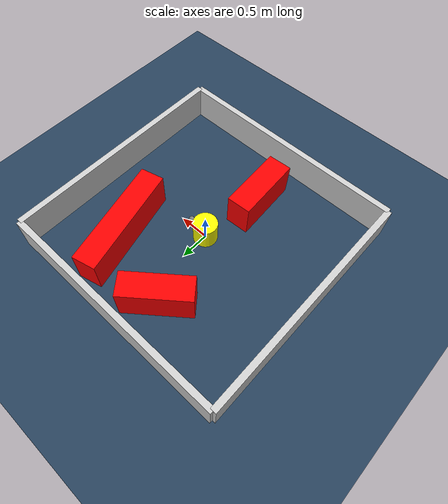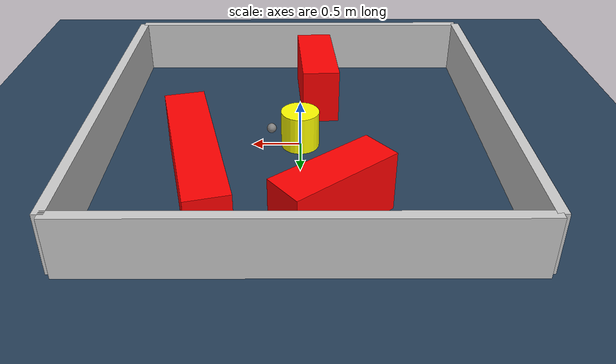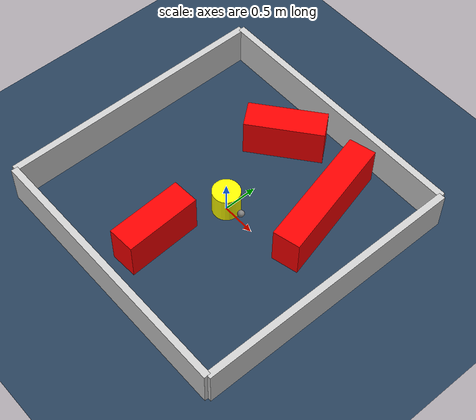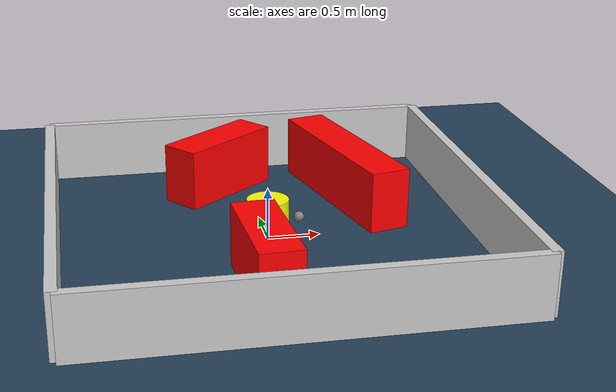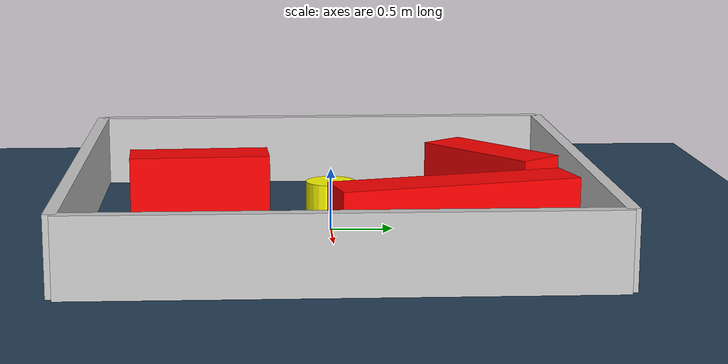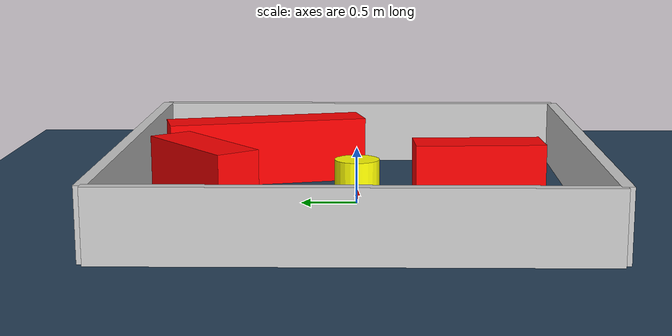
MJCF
<?xml version="1.0" ?>
<mujoco model="generated_environment">
  <option timestep="0.01" integrator="RK4" cone="elliptic"/>
  <default>
    <geom density="1"/>
  </default>
  <asset>
    <texture builtin="gradient" height="3072" rgb1="0.3 0.5 0.7" rgb2="0 0 0" type="skybox" width="512"/>
    <texture builtin="checker" height="300" mark="edge" markrgb="0.8 0.8 0.8" name="groundplane" rgb1="0.2 0.3 0.4" rgb2="0.1 0.2 0.3" type="2d" width="300"/>
    <material name="groundplane" reflectance="0.2" texrepeat="5 5" texture="groundplane" texuniform="true"/>
    <material name="robot" rgba="0.0 1.0 0.0 1"/>
  </asset>
  <worldbody>
    <light dir="0 0 -1" directional="true" pos="0 0 1.5"/>
    <geom condim="4" friction="1.0 0.005 0.001" material="groundplane" name="floor" size="0 0 0.05" type="plane"/>
    <body name="walls">
      <geom name="wall_1" condim="4" pos="-2.0 0.0 0.3" rgba="0.800000011920929 0.800000011920929 0.800000011920929 1.0" size="0.05 2.0 0.3" type="box"/>
      <geom name="wall_2" condim="4" pos="2.0 0.0 0.3" rgba="0.800000011920929 0.800000011920929 0.800000011920929 1.0" size="0.05 2.0 0.3" type="box"/>
      <geom name="wall_3" condim="4" pos="0.0 -2.0 0.3" rgba="0.800000011920929 0.800000011920929 0.800000011920929 1.0" size="2.0 0.05 0.3" type="box"/>
      <geom name="wall_4" condim="4" pos="0.0 2.0 0.3" rgba="0.800000011920929 0.800000011920929 0.800000011920929 1.0" size="2.0 0.05 0.3" type="box"/>
    </body>
    <body name="robot">
      <joint name="joint_x" type="slide" pos="0 0 0" axis="1 0 0"/>
      <joint name="joint_y" type="slide" pos="0 0 0" axis="0 1 0"/>
      <geom name="robot" type="sphere" pos="0.3 0.0 0.2" size="0.05" mass="5." friction="1.0 0.005 0.0001" condim="4" rgba="0.5 0.5 0.5 1.0"/>
      <site name="sensor_ball"/>
    </body>
    <body name="obstacle_movable_1">
      <geom name="obstacle_movable_1" condim="4" pos="0.0 0.0 0.2" euler="0 0 0.0" friction="1.0 0.005 0.001" rgba="1.0 1.0 0.0 1.0" size="0.2 0.2 0.0" type="cylinder" mass="0.1"/>
      <joint type="free"/>
    </body>
    <body name="obstacle_2_static">
      <geom name="obstacle_2_static" condim="4" pos="0.9633744751614766 0.8883648671040769 0.3" euler="0 0 284.02527511767704" friction="1.0 0.005 0.001" rgba="1 0 0 1" size="0.9348574520631623 0.2 0.3" type="box"/>
    </body>
    <body name="obstacle_3_static">
      <geom name="obstacle_3_static" condim="4" pos="-0.20231286495633194 -1.060684242601618 0.3" euler="0 0 273.1559049632457" friction="1.0 0.005 0.001" rgba="1 0 0 1" size="0.561244777182814 0.2 0.3" type="box"/>
    </body>
    <body name="obstacle_4_static">
      <geom name="obstacle_4_static" condim="4" pos="-0.286872901769049 1.3293766526283621 0.3" euler="0 0 38.74189677894387" friction="1.0 0.005 0.001" rgba="1 0 0 1" size="0.5649994447721909 0.2 0.3" type="box"/>
    </body>
  </worldbody>
  <actuator>
    <motor name="actuator_x" joint="joint_x" gear="1" ctrlrange="-1 1"/>
    <motor name="actuator_y" joint="joint_y" gear="1" ctrlrange="-1 1"/>
  </actuator>
</mujoco>
